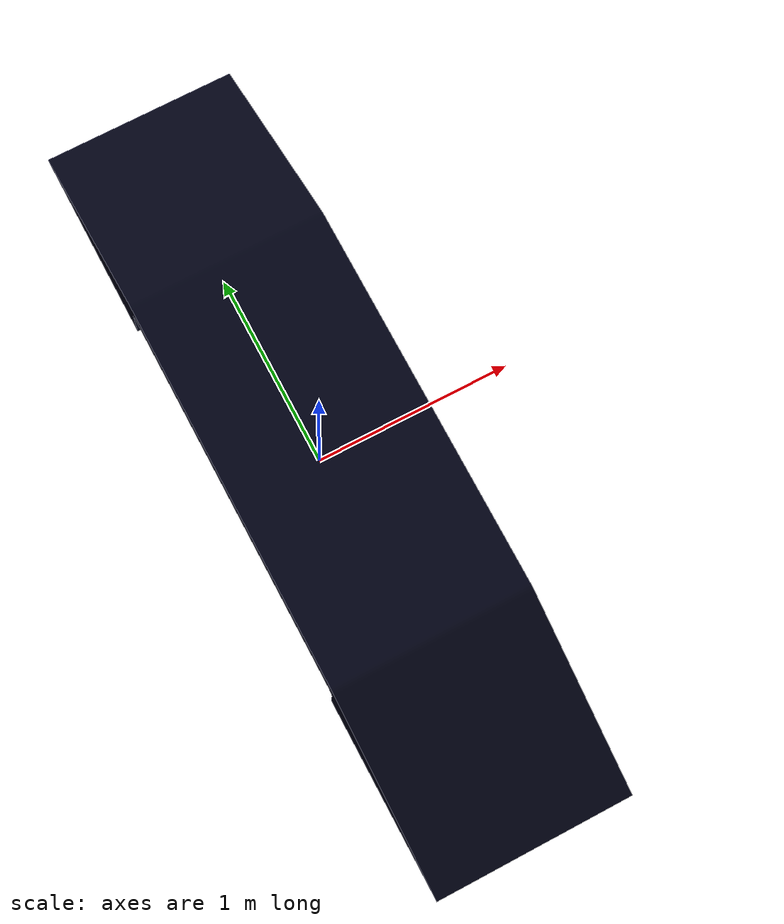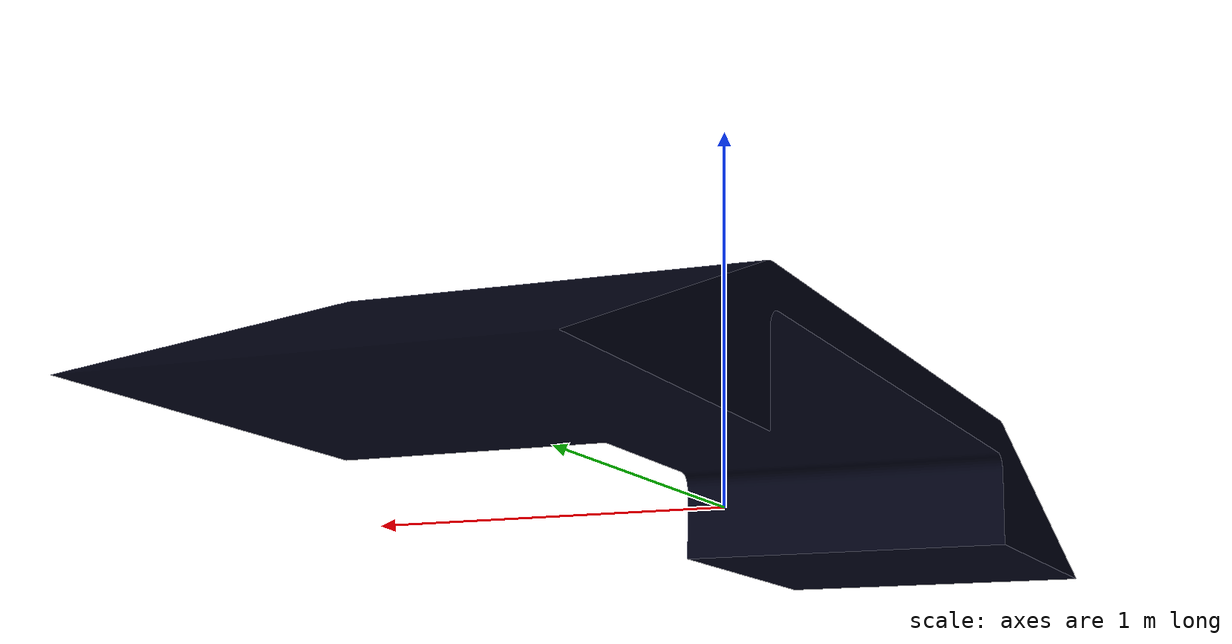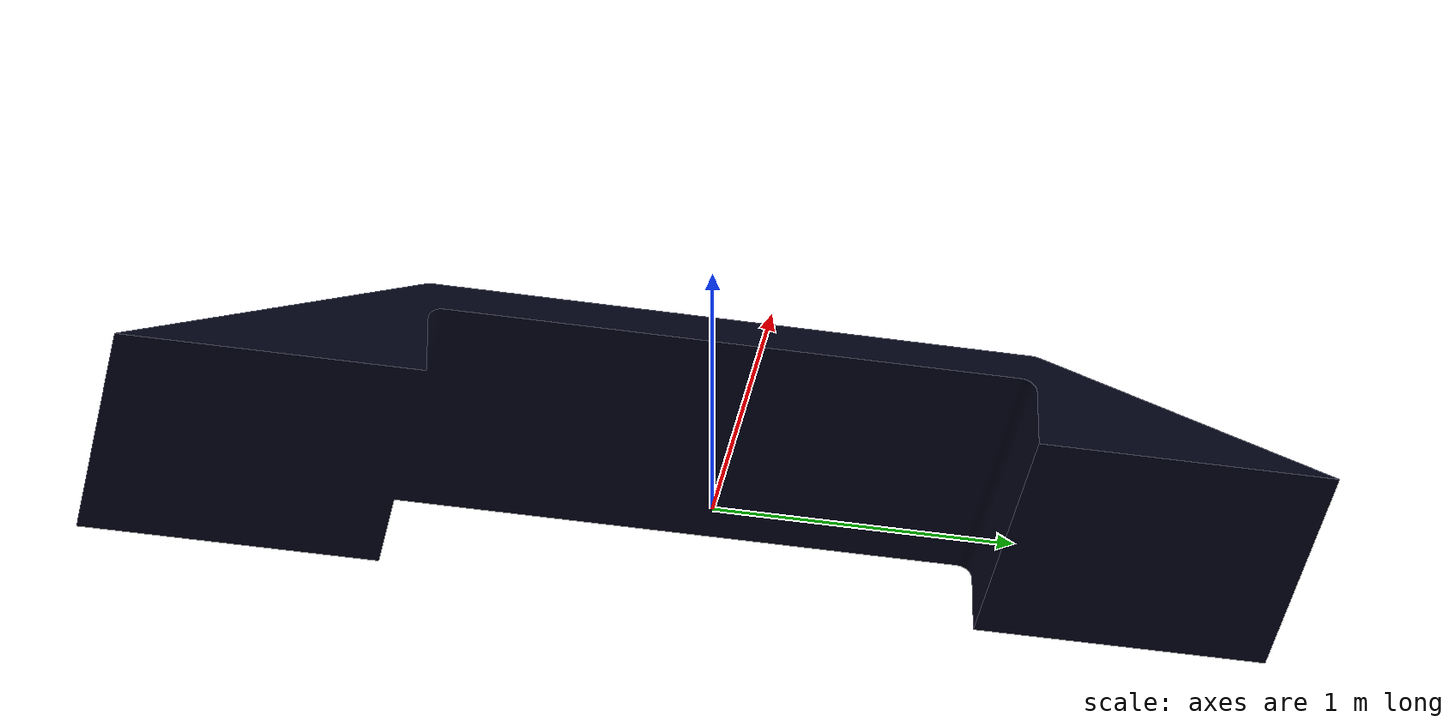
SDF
<?xml version="1.0" ?>
<sdf version="1.6">
  <model name="slop">
    <static>false</static>
    <link name="link">
      <visual name="visual">
        <geometry>
          <mesh>
            <uri>model://slop/slop.dae</uri>
            <scale>1 1 1</scale>
          </mesh>
        </geometry>
      </visual>
      <collision name="collision">
        <geometry>
          <mesh>
            <uri>model://slop/slop.dae</uri>
            <scale>1 1 1</scale>
          </mesh>
        </geometry>
      </collision>
    </link>
  </model>
</sdf>
